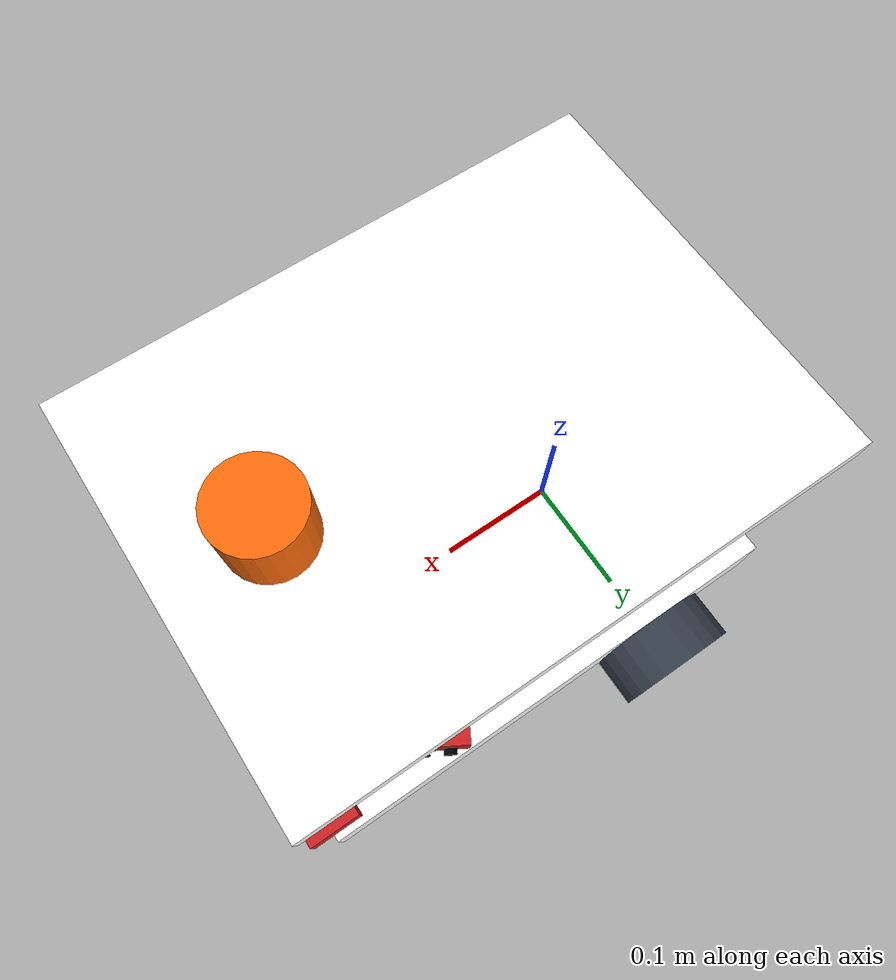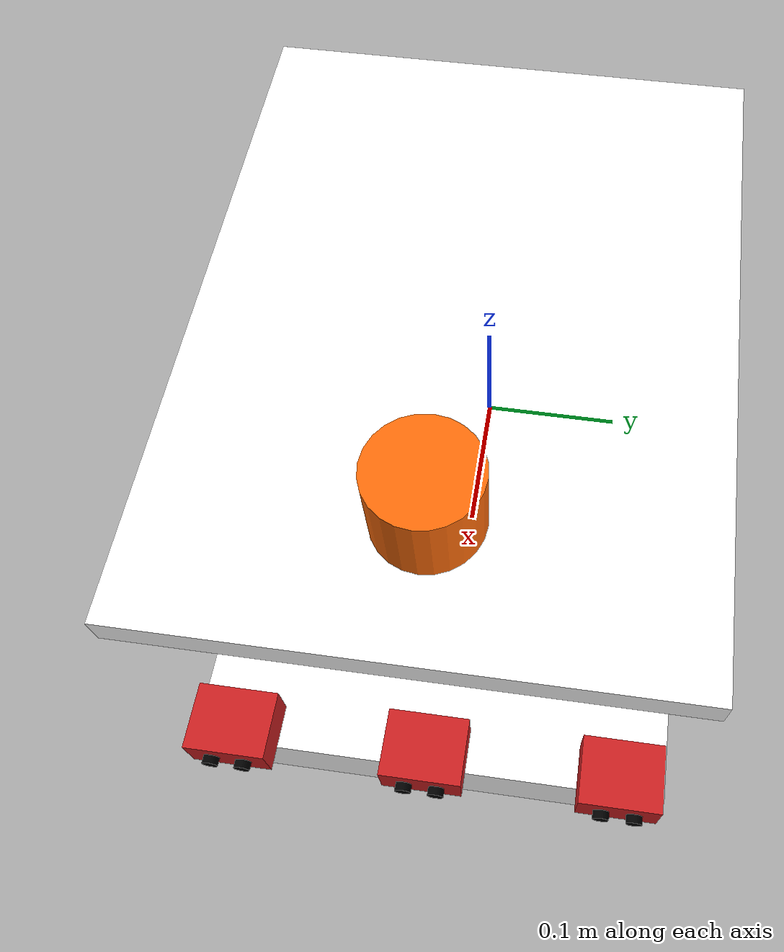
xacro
<?xml version="1.0" ?>
<robot xmlns:xacro="http://www.ros.org/wiki/xacro" name="mobile_robot">

  <!-- including xacro files -->

  <xacro:include filename="robot_inertia.xacro" />
  <xacro:include filename="lidar.xacro" />
  <xacro:include filename="ultrasonic_c.xacro" />
  <xacro:include filename="ultrasonic_l.xacro" />
  <xacro:include filename="ultrasonic_r.xacro" />
  <xacro:include filename="ultrasonic_s_l.xacro" />
  <xacro:include filename="ultrasonic_s_r.xacro" />

  <material name="black">
    <color rgba="0.0 0.0 0.0 1.0"/>
  </material>
  <material name="blue">
    <color rgba="0.203125 0.23828125 0.28515625 1.0"/>
  </material>
  <material name="green">
    <color rgba="0.0 0.8 0.0 1.0"/>
  </material>
  <material name="grey">
    <color rgba="0.2 0.2 0.2 1.0"/>
  </material>
  <material name="orange">
    <color rgba="1.0 0.423529411765 0.0392156862745 1.0"/>
  </material>
  <material name="brown">
    <color rgba="0.870588235294 0.811764705882 0.764705882353 1.0"/>
  </material>
  <material name="red">
    <color rgba="0.80078125 0.12890625 0.1328125 1.0"/>
  </material>
  <material name="white">
    <color rgba="1.0 1.0 1.0 1.0"/>
  </material>

  <gazebo reference="chassis">
    <material>Gazebo/White</material>
  </gazebo>
  <gazebo reference="left_wheel">
    <material>Gazebo/Blue</material>
  </gazebo>
  <gazebo reference="right_wheel">
    <material>Gazebo/Blue</material>
  </gazebo>

   <gazebo reference="left_rod">
    <material>Gazebo/Black</material>
  </gazebo>
  <gazebo reference="right_rod">
    <material>Gazebo/Black</material>
  </gazebo>
  <gazebo reference="second_plate">
    <material>Gazebo/White</material>
  </gazebo>

  <gazebo>
    <plugin filename="libgazebo_ros_diff_drive.so" name="differential_drive_controller">
      <legacyMode>false</legacyMode>
      <alwaysOn>true</alwaysOn>
      <updateRate>20</updateRate>
      <leftJoint>left_wheel_joint</leftJoint>
      <rightJoint>right_wheel_joint</rightJoint>
      <wheelSeparation>0.3</wheelSeparation>
      <wheelDiameter>0.1</wheelDiameter>
      <torque>0.08</torque>
      <commandTopic>cmd_vel</commandTopic>
      <odometryTopic>odom</odometryTopic>
      <odometryFrame>odom</odometryFrame>
      <robotBaseFrame>base_link</robotBaseFrame>
    </plugin>
  </gazebo>

    <link name="base_link">
    </link>

    <joint name="chassis_joint" type="fixed">
        <parent link="base_link"/>
        <child link="chassis"/>
        <origin xyz="0.1 0 0"/>
    </joint>

    <link name="chassis">
        <visual>
            <origin xyz="0 0 0.025"/>
            <geometry>
               <box size="0.4 0.3 0.05"/>
            </geometry>
            <material name="white"/>
        </visual>
        <collision>
            <origin xyz="0 0 0.025"/>
            <geometry>
               <box size="0.4 0.3 0.05"/>
            </geometry>
        </collision>
        <xacro:box_inertia mass="0.5" x="0.4" y="0.3" z="0.05">
            <origin xyz="0 0 0.025" rpy="0 0 0"/>
        </xacro:box_inertia>
    </link>

    <joint name="left_wheel_joint" type="continuous">
        <parent link="base_link"/>
        <child link="left_wheel"/>
        <origin xyz="0 0.17 0" rpy="-${pi/2} 0 0"/>
        <axis xyz="0 0 1"/>
    </joint>

    <link name="left_wheel">
        <visual>
            <geometry>
               <cylinder radius="0.05" length="0.04"/>
            </geometry>
            <material name="blue"/>
        </visual>
        <collision>
            <geometry>
               <cylinder radius="0.05" length="0.04"/>
            </geometry>
        </collision>
        <xacro:cylinder_inertia mass="0.1" length="0.4" radius="0.05">
            <origin xyz="0 0 0" rpy="0 0 0"/>
        </xacro:cylinder_inertia>
    </link>

    <joint name="right_wheel_joint" type="continuous">
        <parent link="base_link"/>
        <child link="right_wheel"/>
        <origin xyz="0 -0.17 0" rpy="-${pi/2} 0 0"/>
        <axis xyz="0 0 1"/>
    </joint>

    <link name="right_wheel">
        <visual>
            <geometry>
               <cylinder radius="0.05" length="0.04"/>
            </geometry>
            <material name="blue"/>
        </visual>
        <collision>
            <geometry>
               <cylinder radius="0.05" length="0.04"/>
            </geometry>
        </collision>
        <xacro:cylinder_inertia mass="0.1" length="0.4" radius="0.05">
            <origin xyz="0 0 0" rpy="0 0 0"/>
        </xacro:cylinder_inertia>
    </link>

    <joint name="castor_joint" type="fixed">
        <parent link="chassis"/>
        <child link="castor"/>
        <origin xyz="0.125 0 0"/>
    </joint>

    <link name="castor">
        <visual>
            <geometry>
               <sphere radius="0.05"/>
            </geometry>
            <material name="blue"/>
        </visual>
        <collision>
            <geometry>
               <sphere radius="0.05"/>
            </geometry>
        </collision>
        <xacro:sphere_inertia mass="0.1" radius="0.05">
            <origin xyz="0 0 0" rpy="0 0 0"/>
        </xacro:sphere_inertia>
    </link>

  <gazebo reference="castor">
    <material>Gazebo/Black</material>
    <mu1 value="0.001"/>
    <mu2 value="0.001"/>
  </gazebo>

  <!-- double decker -->
  <joint name="left_rod_joint" type="fixed">
        <parent link="chassis"/>
        <child link="left_rod"/>
        <origin xyz="0 0.1 0.15"/>
    </joint>

    <link name="left_rod">
        <visual>
            <origin xyz="0 0 0"/>
            <geometry>
               <box size="0.02 0.02 0.20"/>
            </geometry>
            <material name="black"/>
        </visual>
        <collision>
            <origin xyz="0 0 0"/>
            <geometry>
               <box size="0.02 0.02 0.20"/>
            </geometry>
        </collision>
        <xacro:box_inertia mass="0.1" x="0.02" y="0.02" z="0.20">
            <origin xyz="0 0 0" rpy="0 0 0"/>
        </xacro:box_inertia>
    </link>

    <joint name="right_rod_joint" type="fixed">
        <parent link="chassis"/>
        <child link="right_rod"/>
        <origin xyz="0 -0.1 0.15"/>
    </joint>

    <link name="right_rod">
        <visual>
            <origin xyz="0 0 0"/>
            <geometry>
               <box size="0.02 0.02 0.20"/>
            </geometry>
            <material name="black"/>
        </visual>
        <collision>
            <origin xyz="0 0 0"/>
            <geometry>
               <box size="0.02 0.02 0.20"/>
            </geometry>
        </collision>
        <xacro:box_inertia mass="0.1" x="0.02" y="0.02" z="0.20">
            <origin xyz="0 0 0" rpy="0 0 0"/>
        </xacro:box_inertia>
    </link>

    <!-- second plate-->

    <joint name="second_plate_joint" type="fixed">
        <parent link="chassis"/>
        <child link="second_plate"/>
        <origin xyz="0 0 0.25"/>
    </joint>

    <link name="second_plate">
        <visual>
            <origin xyz="0 0 0"/>
            <geometry>
               <box size="0.4 0.3 0.02"/>
            </geometry>
            <material name="white"/>
        </visual>
        <collision>
            <origin xyz="0 0 0"/>
            <geometry>
               <box size="0.4 0.3 0.02"/>
            </geometry>
        </collision>
        <xacro:box_inertia mass="0.1" x="0.4" y="0.3" z="0.02">
            <origin xyz="0 0 0" rpy="0 0 0"/>
        </xacro:box_inertia>
    </link>

</robot>

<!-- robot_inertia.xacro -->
<robot xmlns:xacro="http://www.ros.org/wiki/xacro">

   <xacro:macro name="box_inertia" params="mass x y z *origin">
      <inertial>
         <xacro:insert_block name="origin"/>
         <mass value="${mass}" />
         <inertia ixx="${(1/12) * mass * (y*y+z*z)}" ixy="0.0" ixz="0.0"
                  iyy="${(1/12) * mass * (x*x+z*z)}" iyz="0.0"
                  izz="${(1/12) * mass * (x*x+y*y)}" />
      </inertial>
   </xacro:macro>

    <xacro:macro name="cylinder_inertia" params="mass length radius *origin">
        <inertial>
            <xacro:insert_block name="origin"/>
            <mass value="${mass}" />
            <inertia ixx="${(1/12) * mass * (3*radius*radius + length*length)}" ixy="0.0" ixz="0.0"
                    iyy="${(1/12) * mass * (3*radius*radius + length*length)}" iyz="0.0"
                    izz="${(1/2) * mass * (radius*radius)}" />
        </inertial>
    </xacro:macro>

    <xacro:macro name="sphere_inertia" params="mass radius *origin">
        <inertial>
            <xacro:insert_block name="origin"/>
            <mass value="${mass}" />
            <inertia ixx="${(2/5) * mass * (radius*radius)}" ixy="0.0" ixz="0.0"
                    iyy="${(2/5) * mass * (radius*radius)}" iyz="0.0"
                    izz="${(2/5) * mass * (radius*radius)}" />
        </inertial>
    </xacro:macro>

</robot>

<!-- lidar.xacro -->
<robot xmlns:xacro="http://www.ros.org/wiki/xacro">

<!-- gazebo plugin for lidar-->

  <gazebo reference="lidar">
    <sensor type="ray" name="head_hokuyo_sensor">
      <pose>0 0 0 0 0 0</pose>
      <visualize>false</visualize>
      <update_rate>20</update_rate>
      <ray>
        <scan>
          <horizontal>
            <samples>720</samples>
            <resolution>1</resolution>
            <min_angle>-1.570796</min_angle>
            <max_angle>1.570796</max_angle>
          </horizontal>
        </scan>
        <range>
          <min>0.10</min>
          <max>10.0</max>
          <resolution>0.01</resolution>
        </range>
        <noise>
          <type>gaussian</type>
          <mean>0.0</mean>
          <stddev>0.01</stddev>
        </noise>
      </ray>
      <plugin name="gazebo_ros_head_hokuyo_controller" filename="libgazebo_ros_laser.so">
        <topicName>scan</topicName>
        <frameName>lidar</frameName>
      </plugin>
    </sensor>
  </gazebo>

<!-- gazebo color-->
<gazebo reference="lidar">
    <material>Gazebo/Orange</material>
</gazebo>

<!-- lidar sample urdf-->

    <joint name="lidar_joint" type="fixed">
        <parent link="castor"/>
        <child link="lidar"/>
        <origin xyz="0 0 0.285" rpy="0 0 0"/>
    </joint>

    <link name="lidar">
        <visual>
            <geometry>
               <cylinder radius="0.03" length="0.05"/>
            </geometry>
            <material name="orange"/>
        </visual>
        <collision>
            <geometry>
               <cylinder radius="0.03" length="0.05"/>
            </geometry>
        </collision>
        <xacro:cylinder_inertia mass="0.1" length="0.5" radius="0.03">
            <origin xyz="0 0 0" rpy="0 0 0"/>
        </xacro:cylinder_inertia>
    </link>

</robot>

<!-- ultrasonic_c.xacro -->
<robot xmlns:xacro="http://www.ros.org/wiki/xacro">

   <gazebo reference="ultrasonic_c">
    <material>Gazebo/Red</material>
   </gazebo>
   <gazebo reference="ultrasonic_transmitter_c">
    <material>Gazebo/Black</material>
   </gazebo>
   <gazebo reference="ultrasonic_receiver_c">
    <material>Gazebo/Black</material>
   </gazebo>

   <!-- gazebo plugin modified-->

<gazebo reference="ultrasonic_c">
   <sensor type="ray" name="ultrasonic_c">
      <pose>0 0 0 0 0 0</pose>
      <update_rate>50</update_rate>
      <ray>
         <scan>
            <horizontal>
               <samples>5</samples>
               <resolution>1.000</resolution>
               <min_angle>-0.12</min_angle>
               <max_angle>0.12</max_angle>
            </horizontal>
            <vertical>
               <samples>5</samples>
               <resolution>1.00</resolution>
               <min_angle>-0.12</min_angle>
               <max_angle>0.12</max_angle>
            </vertical>
         </scan>
         <range>
            <min>0.02</min>
            <max>0.8</max>
            <resolution>0.01</resolution>
         </range>
      </ray>
      <plugin filename="libgazebo_ros_range.so" name="gazebo_ros_range">
         <gaussianNoise>0.005</gaussianNoise>
         <alwaysOn>true</alwaysOn>
         <updateRate>5</updateRate>
         <topicName>rangeSonar_c</topicName>
         <frameName>ultrasonic_c</frameName>
         <visualize>true</visualize>
         <radiation>ultrasound</radiation>
         <fov>${10*pi/180}</fov>
      </plugin>
   </sensor>
</gazebo>

<!-- ultrasonic urdf-->

    <joint name="ultrasonic_joint_c" type="fixed">
      <parent link="castor"/>
      <child link="ultrasonic_c"/>
      <origin xyz="0.070 0 0.07" rpy="${pi/2} 0 0"/>
    </joint>
    <link name="ultrasonic_c">
        <visual>
            <origin xyz="0 0 0"/>
            <geometry>
               <box size="0.04 0.03 0.05"/>
            </geometry>
            <material name="red"/>
        </visual>
        <xacro:box_inertia mass="0.05" x="0.04" y="0.03" z="0.05">
            <origin xyz="0 0 0" rpy="0 0 0"/>
        </xacro:box_inertia>
    </link>

    <!-- detaling -->

    <joint name="ultrasonic_transmitter_joint_c" type="fixed">
      <parent link="ultrasonic_c"/>
      <child link="ultrasonic_transmitter_c"/>
      <origin xyz="0.005 0 0.01" rpy="0 ${pi/2} 0"/>
    </joint>

    <link name="ultrasonic_transmitter_c">
        <visual>
            <geometry>
               <cylinder radius="0.005" length="0.04"/>
            </geometry>
            <material name="black"/>
        </visual>
        <xacro:cylinder_inertia mass="0.01" length="0.4" radius="0.005">
            <origin xyz="0 0 0" rpy="0 0 0"/>
        </xacro:cylinder_inertia>
    </link>

    <joint name="ultrasonic_receiver_joint_c" type="fixed">
      <parent link="ultrasonic_c"/>
      <child link="ultrasonic_receiver_c"/>
      <origin xyz="0.005 0 -0.01" rpy="0 ${pi/2} 0"/>
    </joint>

    <link name="ultrasonic_receiver_c">
        <visual>
            <geometry>
               <cylinder radius="0.005" length="0.04"/>
            </geometry>
            <material name="black"/>
        </visual>
        <xacro:cylinder_inertia mass="0.01" length="0.4" radius="0.005">
            <origin xyz="0 0 0" rpy="0 0 0"/>
        </xacro:cylinder_inertia>
    </link>

</robot>

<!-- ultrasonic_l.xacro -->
<robot xmlns:xacro="http://www.ros.org/wiki/xacro">

   <gazebo reference="ultrasonic_l">
    <material>Gazebo/Red</material>
   </gazebo>
   <gazebo reference="ultrasonic_transmitter_l">
    <material>Gazebo/Black</material>
   </gazebo>
   <gazebo reference="ultrasonic_receiver_l">
    <material>Gazebo/Black</material>
   </gazebo>

   <!-- gazebo plugin modified-->

<gazebo reference="ultrasonic_l">
   <sensor type="ray" name="ultrasonic_l">
      <pose>0 0 0 0 0 0</pose>
      <update_rate>50</update_rate>
      <ray>
         <scan>
            <horizontal>
               <samples>5</samples>
               <resolution>1.000</resolution>
               <min_angle>-0.12</min_angle>
               <max_angle>0.12</max_angle>
            </horizontal>
            <vertical>
               <samples>5</samples>
               <resolution>1.00</resolution>
               <min_angle>-0.12</min_angle>
               <max_angle>0.12</max_angle>
            </vertical>
         </scan>
         <range>
            <min>0.02</min>
            <max>0.8</max>
            <resolution>0.01</resolution>
         </range>
      </ray>
      <plugin filename="libgazebo_ros_range.so" name="gazebo_ros_range">
         <gaussianNoise>0.005</gaussianNoise>
         <alwaysOn>true</alwaysOn>
         <updateRate>5</updateRate>
         <topicName>rangeSonar_l</topicName>
         <frameName>ultrasonic_l</frameName>
         <visualize>true</visualize>
         <radiation>ultrasound</radiation>
         <fov>${10*pi/180}</fov>
      </plugin>
   </sensor>
</gazebo>

<!-- ultrasonic urdf-->

    <joint name="ultrasonic_joint_l" type="fixed">
      <parent link="ultrasonic_c"/>
      <child link="ultrasonic_l"/>
      <origin xyz="0 0 0.12" rpy="0 0 0"/>
    </joint>
    <link name="ultrasonic_l">
        <visual>
            <origin xyz="0 0 0"/>
            <geometry>
               <box size="0.04 0.03 0.05"/>
            </geometry>
            <material name="red"/>
        </visual>
        <xacro:box_inertia mass="0.05" x="0.04" y="0.03" z="0.05">
            <origin xyz="0 0 0" rpy="0 0 0"/>
        </xacro:box_inertia>
    </link>

    <!-- detaling -->

    <joint name="ultrasonic_transmitter_joint_l" type="fixed">
      <parent link="ultrasonic_l"/>
      <child link="ultrasonic_transmitter_l"/>
      <origin xyz="0.005 0 0.01" rpy="0 ${pi/2} 0"/>
    </joint>

    <link name="ultrasonic_transmitter_l">
        <visual>
            <geometry>
               <cylinder radius="0.005" length="0.04"/>
            </geometry>
            <material name="black"/>
        </visual>
        <xacro:cylinder_inertia mass="0.01" length="0.4" radius="0.005">
            <origin xyz="0 0 0" rpy="0 0 0"/>
        </xacro:cylinder_inertia>
    </link>

    <joint name="ultrasonic_receiver_joint_l" type="fixed">
      <parent link="ultrasonic_l"/>
      <child link="ultrasonic_receiver_l"/>
      <origin xyz="0.005 0 -0.01" rpy="0 ${pi/2} 0"/>
    </joint>

    <link name="ultrasonic_receiver_l">
        <visual>
            <geometry>
               <cylinder radius="0.005" length="0.04"/>
            </geometry>
            <material name="black"/>
        </visual>
        <xacro:cylinder_inertia mass="0.01" length="0.4" radius="0.005">
            <origin xyz="0 0 0" rpy="0 0 0"/>
        </xacro:cylinder_inertia>
    </link>

</robot>

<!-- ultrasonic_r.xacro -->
<robot xmlns:xacro="http://www.ros.org/wiki/xacro">

   <gazebo reference="ultrasonic_r">
    <material>Gazebo/Red</material>
   </gazebo>
   <gazebo reference="ultrasonic_transmitter_r">
    <material>Gazebo/Black</material>
   </gazebo>
   <gazebo reference="ultrasonic_receiver_r">
    <material>Gazebo/Black</material>
   </gazebo>

   <!-- gazebo plugin modified-->

<gazebo reference="ultrasonic_r">
   <sensor type="ray" name="ultrasonic_r">
      <pose>0 0 0 0 0 0</pose>
      <update_rate>50</update_rate>
      <ray>
         <scan>
            <horizontal>
               <samples>5</samples>
               <resolution>1.000</resolution>
               <min_angle>-0.12</min_angle>
               <max_angle>0.12</max_angle>
            </horizontal>
            <vertical>
               <samples>5</samples>
               <resolution>1.00</resolution>
               <min_angle>-0.12</min_angle>
               <max_angle>0.12</max_angle>
            </vertical>
         </scan>
         <range>
            <min>0.02</min>
            <max>0.8</max>
            <resolution>0.01</resolution>
         </range>
      </ray>
      <plugin filename="libgazebo_ros_range.so" name="gazebo_ros_range">
         <gaussianNoise>0.005</gaussianNoise>
         <alwaysOn>true</alwaysOn>
         <updateRate>5</updateRate>
         <topicName>rangeSonar_r</topicName>
         <frameName>ultrasonic_r</frameName>
         <visualize>true</visualize>
         <radiation>ultrasound</radiation>
         <fov>${10*pi/180}</fov>
      </plugin>
   </sensor>
</gazebo>

<!-- ultrasonic urdf-->

    <joint name="ultrasonic_joint_r" type="fixed">
      <parent link="ultrasonic_c"/>
      <child link="ultrasonic_r"/>
      <origin xyz="0 0 -0.12" rpy="0 0 0"/>
    </joint>
    <link name="ultrasonic_r">
        <visual>
            <origin xyz="0 0 0"/>
            <geometry>
               <box size="0.04 0.03 0.05"/>
            </geometry>
            <material name="red"/>
        </visual>
        <xacro:box_inertia mass="0.05" x="0.04" y="0.03" z="0.05">
            <origin xyz="0 0 0" rpy="0 0 0"/>
        </xacro:box_inertia>
    </link>

    <!-- detaling -->

    <joint name="ultrasonic_transmitter_joint_r" type="fixed">
      <parent link="ultrasonic_r"/>
      <child link="ultrasonic_transmitter_r"/>
      <origin xyz="0.005 0 0.01" rpy="0 ${pi/2} 0"/>
    </joint>

    <link name="ultrasonic_transmitter_r">
        <visual>
            <geometry>
               <cylinder radius="0.005" length="0.04"/>
            </geometry>
            <material name="black"/>
        </visual>
        <xacro:cylinder_inertia mass="0.01" length="0.4" radius="0.005">
            <origin xyz="0 0 0" rpy="0 0 0"/>
        </xacro:cylinder_inertia>
    </link>

    <joint name="ultrasonic_receiver_joint_r" type="fixed">
      <parent link="ultrasonic_r"/>
      <child link="ultrasonic_receiver_r"/>
      <origin xyz="0.005 0 -0.01" rpy="0 ${pi/2} 0"/>
    </joint>

    <link name="ultrasonic_receiver_r">
        <visual>
            <geometry>
               <cylinder radius="0.005" length="0.04"/>
            </geometry>
            <material name="black"/>
        </visual>
        <xacro:cylinder_inertia mass="0.01" length="0.4" radius="0.005">
            <origin xyz="0 0 0" rpy="0 0 0"/>
        </xacro:cylinder_inertia>
    </link>

</robot>

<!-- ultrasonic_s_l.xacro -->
<robot xmlns:xacro="http://www.ros.org/wiki/xacro">

   <gazebo reference="ultrasonic_s_l">
    <material>Gazebo/Red</material>
   </gazebo>
   <gazebo reference="ultrasonic_transmitter_s_l">
    <material>Gazebo/Black</material>
   </gazebo>
   <gazebo reference="ultrasonic_receiver_s_l">
    <material>Gazebo/Black</material>
   </gazebo>

   <!-- gazebo plugin modified-->

<gazebo reference="ultrasonic_s_l">
   <sensor type="ray" name="ultrasonic_s_l">
      <pose>0 0 0 0 0 0</pose>
      <update_rate>50</update_rate>
      <ray>
         <scan>
            <horizontal>
               <samples>5</samples>
               <resolution>1.000</resolution>
               <min_angle>-0.12</min_angle>
               <max_angle>0.12</max_angle>
            </horizontal>
            <vertical>
               <samples>5</samples>
               <resolution>1.00</resolution>
               <min_angle>-0.12</min_angle>
               <max_angle>0.12</max_angle>
            </vertical>
         </scan>
         <range>
            <min>0.02</min>
            <max>0.8</max>
            <resolution>0.01</resolution>
         </range>
      </ray>
      <plugin filename="libgazebo_ros_range.so" name="gazebo_ros_range">
         <gaussianNoise>0.005</gaussianNoise>
         <alwaysOn>true</alwaysOn>
         <updateRate>5</updateRate>
         <topicName>rangeSonar_s_l</topicName>
         <frameName>ultrasonic_s_l</frameName>
         <visualize>true</visualize>
         <radiation>ultrasound</radiation>
         <fov>${10*pi/180}</fov>
      </plugin>
   </sensor>
</gazebo>

<!-- ultrasonic urdf-->

    <joint name="ultrasonic_joint_s_l" type="fixed">
      <parent link="ultrasonic_l"/>
      <child link="ultrasonic_s_l"/>
      <origin xyz="-0.1 0 0" rpy="0 -${pi/3} 0"/>
    </joint>
    <link name="ultrasonic_s_l">
        <visual>
            <origin xyz="0 0 0"/>
            <geometry>
               <box size="0.04 0.03 0.05"/>
            </geometry>
            <material name="red"/>
        </visual>
        <xacro:box_inertia mass="0.05" x="0.04" y="0.03" z="0.05">
            <origin xyz="0 0 0" rpy="0 0 0"/>
        </xacro:box_inertia>
    </link>

    <!-- detaling -->

    <joint name="ultrasonic_transmitter_joint_s_l" type="fixed">
      <parent link="ultrasonic_s_l"/>
      <child link="ultrasonic_transmitter_s_l"/>
      <origin xyz="0.005 0 0.01" rpy="0 ${pi/2} 0"/>
    </joint>

    <link name="ultrasonic_transmitter_s_l">
        <visual>
            <geometry>
               <cylinder radius="0.005" length="0.04"/>
            </geometry>
            <material name="black"/>
        </visual>
        <xacro:cylinder_inertia mass="0.01" length="0.4" radius="0.005">
            <origin xyz="0 0 0" rpy="0 0 0"/>
        </xacro:cylinder_inertia>
    </link>

    <joint name="ultrasonic_receiver_joint_s_l" type="fixed">
      <parent link="ultrasonic_s_l"/>
      <child link="ultrasonic_receiver_s_l"/>
      <origin xyz="0.005 0 -0.01" rpy="0 ${pi/2} 0"/>
    </joint>

    <link name="ultrasonic_receiver_s_l">
        <visual>
            <geometry>
               <cylinder radius="0.005" length="0.04"/>
            </geometry>
            <material name="black"/>
        </visual>
        <xacro:cylinder_inertia mass="0.01" length="0.4" radius="0.005">
            <origin xyz="0 0 0" rpy="0 0 0"/>
        </xacro:cylinder_inertia>
    </link>

</robot>

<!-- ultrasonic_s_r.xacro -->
<robot xmlns:xacro="http://www.ros.org/wiki/xacro">

   <gazebo reference="ultrasonic_s_r">
    <material>Gazebo/Red</material>
   </gazebo>
   <gazebo reference="ultrasonic_transmitter_s_r">
    <material>Gazebo/Black</material>
   </gazebo>
   <gazebo reference="ultrasonic_receiver_s_r">
    <material>Gazebo/Black</material>
   </gazebo>

   <!-- gazebo plugin modified-->

<gazebo reference="ultrasonic_s_r">
   <sensor type="ray" name="ultrasonic_s_r">
      <pose>0 0 0 0 0 0</pose>
      <update_rate>50</update_rate>
      <ray>
         <scan>
            <horizontal>
               <samples>5</samples>
               <resolution>1.000</resolution>
               <min_angle>-0.12</min_angle>
               <max_angle>0.12</max_angle>
            </horizontal>
            <vertical>
               <samples>5</samples>
               <resolution>1.00</resolution>
               <min_angle>-0.12</min_angle>
               <max_angle>0.12</max_angle>
            </vertical>
         </scan>
         <range>
            <min>0.02</min>
            <max>0.8</max>
            <resolution>0.01</resolution>
         </range>
      </ray>
      <plugin filename="libgazebo_ros_range.so" name="gazebo_ros_range">
         <gaussianNoise>0.005</gaussianNoise>
         <alwaysOn>true</alwaysOn>
         <updateRate>5</updateRate>
         <topicName>rangeSonar_s_r</topicName>
         <frameName>ultrasonic_s_r</frameName>
         <visualize>true</visualize>
         <radiation>ultrasound</radiation>
         <fov>${10*pi/180}</fov>
      </plugin>
   </sensor>
</gazebo>

<!-- ultrasonic urdf-->

    <joint name="ultrasonic_joint_s_r" type="fixed">
      <parent link="ultrasonic_r"/>
      <child link="ultrasonic_s_r"/>
      <origin xyz="-0.1 0 0" rpy="0 ${pi/3} 0"/>
    </joint>
    <link name="ultrasonic_s_r">
        <visual>
            <origin xyz="0 0 0"/>
            <geometry>
               <box size="0.04 0.03 0.05"/>
            </geometry>
            <material name="red"/>
        </visual>
        <xacro:box_inertia mass="0.05" x="0.04" y="0.03" z="0.05">
            <origin xyz="0 0 0" rpy="0 0 0"/>
        </xacro:box_inertia>
    </link>

    <!-- detaling -->

    <joint name="ultrasonic_transmitter_joint_s_r" type="fixed">
      <parent link="ultrasonic_s_r"/>
      <child link="ultrasonic_transmitter_s_r"/>
      <origin xyz="0.005 0 0.01" rpy="0 ${pi/2} 0"/>
    </joint>

    <link name="ultrasonic_transmitter_s_r">
        <visual>
            <geometry>
               <cylinder radius="0.005" length="0.04"/>
            </geometry>
            <material name="black"/>
        </visual>
        <xacro:cylinder_inertia mass="0.01" length="0.4" radius="0.005">
            <origin xyz="0 0 0" rpy="0 0 0"/>
        </xacro:cylinder_inertia>
    </link>

    <joint name="ultrasonic_receiver_joint_s_r" type="fixed">
      <parent link="ultrasonic_s_r"/>
      <child link="ultrasonic_receiver_s_r"/>
      <origin xyz="0.005 0 -0.01" rpy="0 ${pi/2} 0"/>
    </joint>

    <link name="ultrasonic_receiver_s_r">
        <visual>
            <geometry>
               <cylinder radius="0.005" length="0.04"/>
            </geometry>
            <material name="black"/>
        </visual>
        <xacro:cylinder_inertia mass="0.01" length="0.4" radius="0.005">
            <origin xyz="0 0 0" rpy="0 0 0"/>
        </xacro:cylinder_inertia>
    </link>

</robot>
